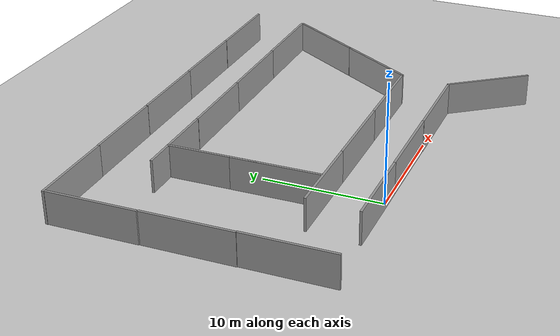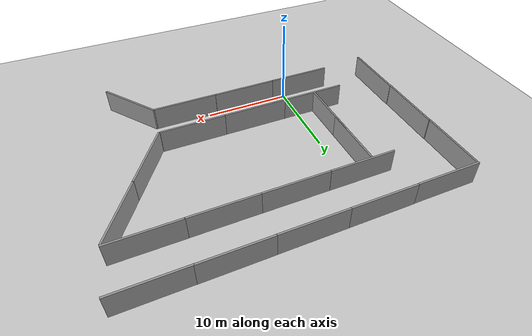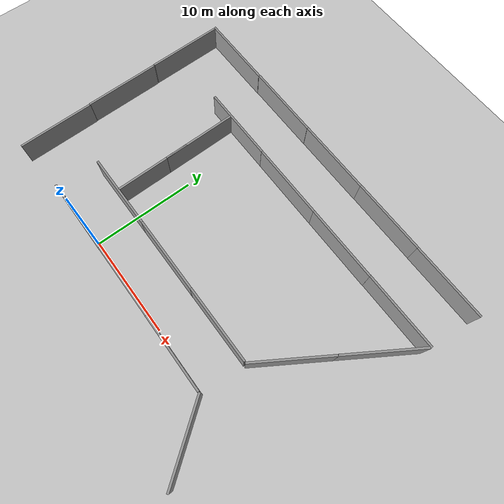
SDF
<sdf version="1.6">
 <world name="default">
  <model name="ground_plane">
   <static>1</static>
   <link name="link">
    <collision name="collision">
     <geometry><plane><normal>0 0 1</normal><size>100 100</size></plane></geometry>
     <surface><friction><ode><mu>100</mu><mu2>50</mu2></ode></friction></surface>
    </collision>
    <visual name="visual">
     <cast_shadows>0</cast_shadows>
     <geometry><plane><normal>0 0 1</normal><size>100 100</size></plane></geometry>
     <material>
      <script><uri>file://media/materials/scripts/gazebo.material</uri><name>Gazebo/Grey</name></script>
     </material>
    </visual>
   </link>
  </model>
  <light name="sun" type="directional">
   <pose>0 0 10 0 -0 0</pose>
   <diffuse>0.8 0.8 0.8 1</diffuse>
   <specular>0.1 0.1 0.1 1</specular>
   <attenuation>
    <range>1000</range>
    <constant>0.9</constant>
    <linear>0.01</linear>
    <quadratic>0.001</quadratic>
   </attenuation>
   <direction>-0.5 0.5 -1</direction>
  </light>
  <physics name="default_physics" default="0" type="ode">
   <ode>
    <solver>
     <type>quick</type>
     <iters>1000</iters>
     <sor>1.3</sor>
     <use_dynamic_moi_rescaling>0</use_dynamic_moi_rescaling>
    </solver>
    <constraints>
     <cfm>0</cfm>
     <erp>0.2</erp>
     <contact_max_correcting_vel>100</contact_max_correcting_vel>
     <contact_surface_layer>0.001</contact_surface_layer>
    </constraints>
   </ode>
   <max_step_size>0.01</max_step_size>
   <real_time_factor>1</real_time_factor>
   <real_time_update_rate>100</real_time_update_rate>
  </physics>
  <gravity>0 0 -9.8</gravity>
  <magnetic_field>6e-06 2.3e-05 -4.2e-05</magnetic_field>
  <atmosphere type="adiabatic"/>
  <scene><ambient>0.4 0.4 0.4 1</ambient><background>0.7 0.7 0.7 1</background><shadows>1</shadows></scene>
  <spherical_coordinates>
   <surface_model>EARTH_WGS84</surface_model>
   <latitude_deg>0</latitude_deg>
   <longitude_deg>0</longitude_deg>
   <elevation>0</elevation>
   <heading_deg>0</heading_deg>
  </spherical_coordinates>
  <model name="grey_wall">
   <static>1</static>
   <link name="link">
    <pose>0 0 1.4 0 -0 0</pose>
    <collision name="collision"><geometry><box><size>7.5 0.2 2.8</size></box></geometry></collision>
    <visual name="visual">
     <cast_shadows>0</cast_shadows>
     <geometry><box><size>7.5 0.2 2.8</size></box></geometry>
     <material>
      <script>
       <uri>model://grey_wall/materials/scripts</uri>
       <uri>model://grey_wall/materials/textures</uri>
       <name>vrc/grey_wall</name>
      </script>
     </material>
    </visual>
   </link>
   <pose>-1.97481 4.11952 0 0 -0 0</pose>
  </model>
  <model name="grey_wall_0">
   <static>1</static>
   <link name="link">
    <pose>0 0 1.4 0 -0 0</pose>
    <collision name="collision"><geometry><box><size>7.5 0.2 2.8</size></box></geometry></collision>
    <visual name="visual">
     <cast_shadows>0</cast_shadows>
     <geometry><box><size>7.5 0.2 2.8</size></box></geometry>
     <material>
      <script>
       <uri>model://grey_wall/materials/scripts</uri>
       <uri>model://grey_wall/materials/textures</uri>
       <name>vrc/grey_wall</name>
      </script>
     </material>
    </visual>
   </link>
   <pose>5.50158 4.1217 0 0 -0 0</pose>
  </model>
  <model name="grey_wall_1">
   <static>1</static>
   <link name="link">
    <pose>0 0 1.4 0 -0 0</pose>
    <collision name="collision"><geometry><box><size>7.5 0.2 2.8</size></box></geometry></collision>
    <visual name="visual">
     <cast_shadows>0</cast_shadows>
     <geometry><box><size>7.5 0.2 2.8</size></box></geometry>
     <material>
      <script>
       <uri>model://grey_wall/materials/scripts</uri>
       <uri>model://grey_wall/materials/textures</uri>
       <name>vrc/grey_wall</name>
      </script>
     </material>
    </visual>
   </link>
   <pose>12.9992 4.13078 0 0 -0 0</pose>
  </model>
  <model name="grey_wall_2">
   <static>1</static>
   <link name="link">
    <pose>0 0 1.4 0 -0 0</pose>
    <collision name="collision"><geometry><box><size>7.5 0.2 2.8</size></box></geometry></collision>
    <visual name="visual">
     <cast_shadows>0</cast_shadows>
     <geometry><box><size>7.5 0.2 2.8</size></box></geometry>
     <material>
      <script>
       <uri>model://grey_wall/materials/scripts</uri>
       <uri>model://grey_wall/materials/textures</uri>
       <name>vrc/grey_wall</name>
      </script>
     </material>
    </visual>
   </link>
   <pose>18.8391 7.25684 0 0 -0 1.01032</pose>
  </model>
  <model name="grey_wall_3">
   <static>1</static>
   <link name="link">
    <pose>0 0 1.4 0 -0 0</pose>
    <collision name="collision"><geometry><box><size>7.5 0.2 2.8</size></box></geometry></collision>
    <visual name="visual">
     <cast_shadows>0</cast_shadows>
     <geometry><box><size>7.5 0.2 2.8</size></box></geometry>
     <material>
      <script>
       <uri>model://grey_wall/materials/scripts</uri>
       <uri>model://grey_wall/materials/textures</uri>
       <name>vrc/grey_wall</name>
      </script>
     </material>
    </visual>
   </link>
   <pose>21.1432 16.8972 0 0 -0 0</pose>
  </model>
  <model name="grey_wall_2_clone">
   <static>1</static>
   <link name="link">
    <pose>0 0 1.4 0 -0 0</pose>
    <collision name="collision"><geometry><box><size>7.5 0.2 2.8</size></box></geometry></collision>
    <visual name="visual">
     <cast_shadows>0</cast_shadows>
     <geometry><box><size>7.5 0.2 2.8</size></box></geometry>
     <material>
      <script>
       <uri>model://grey_wall/materials/scripts</uri>
       <uri>model://grey_wall/materials/textures</uri>
       <name>vrc/grey_wall</name>
      </script>
     </material>
    </visual>
   </link>
   <pose>22.8333 13.6276 0 0 -0 1.01032</pose>
  </model>
  <model name="grey_wall_3_clone">
   <static>1</static>
   <link name="link">
    <pose>0 0 1.4 0 -0 0</pose>
    <collision name="collision"><geometry><box><size>7.5 0.2 2.8</size></box></geometry></collision>
    <visual name="visual">
     <cast_shadows>0</cast_shadows>
     <geometry><box><size>7.5 0.2 2.8</size></box></geometry>
     <material>
      <script>
       <uri>model://grey_wall/materials/scripts</uri>
       <uri>model://grey_wall/materials/textures</uri>
       <name>vrc/grey_wall</name>
      </script>
     </material>
    </visual>
   </link>
   <pose>13.7248 16.882 0 0 -0 0</pose>
  </model>
  <model name="grey_wall_3_clone_clone">
   <static>1</static>
   <link name="link">
    <pose>0 0 1.4 0 -0 0</pose>
    <collision name="collision"><geometry><box><size>7.5 0.2 2.8</size></box></geometry></collision>
    <visual name="visual">
     <cast_shadows>0</cast_shadows>
     <geometry><box><size>7.5 0.2 2.8</size></box></geometry>
     <material>
      <script>
       <uri>model://grey_wall/materials/scripts</uri>
       <uri>model://grey_wall/materials/textures</uri>
       <name>vrc/grey_wall</name>
      </script>
     </material>
    </visual>
   </link>
   <pose>6.26537 16.8814 0 0 -0 0</pose>
  </model>
  <model name="grey_wall_3_clone_clone_0">
   <static>1</static>
   <link name="link">
    <pose>0 0 1.4 0 -0 0</pose>
    <collision name="collision"><geometry><box><size>7.5 0.2 2.8</size></box></geometry></collision>
    <visual name="visual">
     <cast_shadows>0</cast_shadows>
     <geometry><box><size>7.5 0.2 2.8</size></box></geometry>
     <material>
      <script>
       <uri>model://grey_wall/materials/scripts</uri>
       <uri>model://grey_wall/materials/textures</uri>
       <name>vrc/grey_wall</name>
      </script>
     </material>
    </visual>
   </link>
   <pose>-1.24766 16.8863 0 0 -0 0</pose>
  </model>
  <model name="grey_wall_3_clone_clone_1">
   <static>1</static>
   <link name="link">
    <pose>0 0 1.4 0 -0 0</pose>
    <collision name="collision"><geometry><box><size>7.5 0.2 2.8</size></box></geometry></collision>
    <visual name="visual">
     <cast_shadows>0</cast_shadows>
     <geometry><box><size>7.5 0.2 2.8</size></box></geometry>
     <material>
      <script>
       <uri>model://grey_wall/materials/scripts</uri>
       <uri>model://grey_wall/materials/textures</uri>
       <name>vrc/grey_wall</name>
      </script>
     </material>
    </visual>
   </link>
   <pose>-2.19794 7.93708 0 0 0 -1.55755</pose>
  </model>
  <model name="grey_wall_clone">
   <static>1</static>
   <link name="link">
    <pose>0 0 1.4 0 -0 0</pose>
    <collision name="collision"><geometry><box><size>7.5 0.2 2.8</size></box></geometry></collision>
    <visual name="visual">
     <cast_shadows>0</cast_shadows>
     <geometry><box><size>7.5 0.2 2.8</size></box></geometry>
     <material>
      <script>
       <uri>model://grey_wall/materials/scripts</uri>
       <uri>model://grey_wall/materials/textures</uri>
       <name>vrc/grey_wall</name>
      </script>
     </material>
    </visual>
   </link>
   <pose>-2.16652 -0.160988 0 0 -0 0</pose>
  </model>
  <model name="grey_wall_clone_0">
   <static>1</static>
   <link name="link">
    <pose>0 0 1.4 0 -0 0</pose>
    <collision name="collision"><geometry><box><size>7.5 0.2 2.8</size></box></geometry></collision>
    <visual name="visual">
     <cast_shadows>0</cast_shadows>
     <geometry><box><size>7.5 0.2 2.8</size></box></geometry>
     <material>
      <script>
       <uri>model://grey_wall/materials/scripts</uri>
       <uri>model://grey_wall/materials/textures</uri>
       <name>vrc/grey_wall</name>
      </script>
     </material>
    </visual>
   </link>
   <pose>5.2602 -0.148445 0 0 -0 0</pose>
  </model>
  <model name="grey_wall_clone_1">
   <static>1</static>
   <link name="link">
    <pose>0 0 1.4 0 -0 0</pose>
    <collision name="collision"><geometry><box><size>7.5 0.2 2.8</size></box></geometry></collision>
    <visual name="visual">
     <cast_shadows>0</cast_shadows>
     <geometry><box><size>7.5 0.2 2.8</size></box></geometry>
     <material>
      <script>
       <uri>model://grey_wall/materials/scripts</uri>
       <uri>model://grey_wall/materials/textures</uri>
       <name>vrc/grey_wall</name>
      </script>
     </material>
    </visual>
   </link>
   <pose>12.6786 -0.161398 0 0 -0 0</pose>
  </model>
  <model name="grey_wall_2_clone_0">
   <static>1</static>
   <link name="link">
    <pose>0 0 1.4 0 -0 0</pose>
    <collision name="collision"><geometry><box><size>7.5 0.2 2.8</size></box></geometry></collision>
    <visual name="visual">
     <cast_shadows>0</cast_shadows>
     <geometry><box><size>7.5 0.2 2.8</size></box></geometry>
     <material>
      <script>
       <uri>model://grey_wall/materials/scripts</uri>
       <uri>model://grey_wall/materials/textures</uri>
       <name>vrc/grey_wall</name>
      </script>
     </material>
    </visual>
   </link>
   <pose>18.7174 -3.10974 0 0 -0 2.20799</pose>
  </model>
  <model name="grey_wall_3_clone_0">
   <static>1</static>
   <link name="link">
    <pose>0 0 1.4 0 -0 0</pose>
    <collision name="collision"><geometry><box><size>7.5 0.2 2.8</size></box></geometry></collision>
    <visual name="visual">
     <cast_shadows>0</cast_shadows>
     <geometry><box><size>7.5 0.2 2.8</size></box></geometry>
     <material>
      <script>
       <uri>model://grey_wall/materials/scripts</uri>
       <uri>model://grey_wall/materials/textures</uri>
       <name>vrc/grey_wall</name>
      </script>
     </material>
    </visual>
   </link>
   <pose>21.7643 21.8781 0 0 -0 0</pose>
  </model>
  <model name="grey_wall_3_clone_0_clone">
   <static>1</static>
   <link name="link">
    <pose>0 0 1.4 0 -0 0</pose>
    <collision name="collision"><geometry><box><size>7.5 0.2 2.8</size></box></geometry></collision>
    <visual name="visual">
     <cast_shadows>0</cast_shadows>
     <geometry><box><size>7.5 0.2 2.8</size></box></geometry>
     <material>
      <script>
       <uri>model://grey_wall/materials/scripts</uri>
       <uri>model://grey_wall/materials/textures</uri>
       <name>vrc/grey_wall</name>
      </script>
     </material>
    </visual>
   </link>
   <pose>14.3314 21.8927 0 0 -0 0</pose>
  </model>
  <model name="grey_wall_3_clone_0_clone_0">
   <static>1</static>
   <link name="link">
    <pose>0 0 1.4 0 -0 0</pose>
    <collision name="collision"><geometry><box><size>7.5 0.2 2.8</size></box></geometry></collision>
    <visual name="visual">
     <cast_shadows>0</cast_shadows>
     <geometry><box><size>7.5 0.2 2.8</size></box></geometry>
     <material>
      <script>
       <uri>model://grey_wall/materials/scripts</uri>
       <uri>model://grey_wall/materials/textures</uri>
       <name>vrc/grey_wall</name>
      </script>
     </material>
    </visual>
   </link>
   <pose>6.88412 21.8801 0 0 -0 0</pose>
  </model>
  <model name="grey_wall_3_clone_0_clone_1">
   <static>1</static>
   <link name="link">
    <pose>0 0 1.4 0 -0 0</pose>
    <collision name="collision"><geometry><box><size>7.5 0.2 2.8</size></box></geometry></collision>
    <visual name="visual">
     <cast_shadows>0</cast_shadows>
     <geometry><box><size>7.5 0.2 2.8</size></box></geometry>
     <material>
      <script>
       <uri>model://grey_wall/materials/scripts</uri>
       <uri>model://grey_wall/materials/textures</uri>
       <name>vrc/grey_wall</name>
      </script>
     </material>
    </visual>
   </link>
   <pose>-0.632685 21.8741 0 0 -0 0</pose>
  </model>
  <model name="grey_wall_3_clone_0_clone_2">
   <static>1</static>
   <link name="link">
    <pose>0 0 1.4 0 -0 0</pose>
    <collision name="collision"><geometry><box><size>7.5 0.2 2.8</size></box></geometry></collision>
    <visual name="visual">
     <cast_shadows>0</cast_shadows>
     <geometry><box><size>7.5 0.2 2.8</size></box></geometry>
     <material>
      <script>
       <uri>model://grey_wall/materials/scripts</uri>
       <uri>model://grey_wall/materials/textures</uri>
       <name>vrc/grey_wall</name>
      </script>
     </material>
    </visual>
   </link>
   <pose>-8.09715 21.8471 0 0 -0 0</pose>
  </model>
  <model name="grey_wall_3_clone_clone_1_clone">
   <static>1</static>
   <link name="link">
    <pose>0 0 1.4 0 -0 0</pose>
    <collision name="collision"><geometry><box><size>7.5 0.2 2.8</size></box></geometry></collision>
    <visual name="visual">
     <cast_shadows>0</cast_shadows>
     <geometry><box><size>7.5 0.2 2.8</size></box></geometry>
     <material>
      <script>
       <uri>model://grey_wall/materials/scripts</uri>
       <uri>model://grey_wall/materials/textures</uri>
       <name>vrc/grey_wall</name>
      </script>
     </material>
    </visual>
   </link>
   <pose>-11.6764 18.0278 0 0 0 -1.55755</pose>
  </model>
  <model name="grey_wall_3_clone_clone_1_clone_0">
   <static>1</static>
   <link name="link">
    <pose>0 0 1.4 0 -0 0</pose>
    <collision name="collision"><geometry><box><size>7.5 0.2 2.8</size></box></geometry></collision>
    <visual name="visual">
     <cast_shadows>0</cast_shadows>
     <geometry><box><size>7.5 0.2 2.8</size></box></geometry>
     <material>
      <script>
       <uri>model://grey_wall/materials/scripts</uri>
       <uri>model://grey_wall/materials/textures</uri>
       <name>vrc/grey_wall</name>
      </script>
     </material>
    </visual>
   </link>
   <pose>-11.5384 10.4623 0 0 0 -1.55755</pose>
  </model>
  <model name="grey_wall_3_clone_clone_1_clone_1">
   <static>1</static>
   <link name="link">
    <pose>0 0 1.4 0 -0 0</pose>
    <collision name="collision"><geometry><box><size>7.5 0.2 2.8</size></box></geometry></collision>
    <visual name="visual">
     <cast_shadows>0</cast_shadows>
     <geometry><box><size>7.5 0.2 2.8</size></box></geometry>
     <material>
      <script>
       <uri>model://grey_wall/materials/scripts</uri>
       <uri>model://grey_wall/materials/textures</uri>
       <name>vrc/grey_wall</name>
      </script>
     </material>
    </visual>
   </link>
   <pose>-11.3945 3.01248 0 0 0 -1.55755</pose>
  </model>
  <model name="grey_wall_3_clone_clone_1_clone_2">
   <static>1</static>
   <link name="link">
    <pose>0 0 1.4 0 -0 0</pose>
    <collision name="collision"><geometry><box><size>7.5 0.2 2.8</size></box></geometry></collision>
    <visual name="visual">
     <cast_shadows>0</cast_shadows>
     <geometry><box><size>7.5 0.2 2.8</size></box></geometry>
     <material>
      <script>
       <uri>model://grey_wall/materials/scripts</uri>
       <uri>model://grey_wall/materials/textures</uri>
       <name>vrc/grey_wall</name>
      </script>
     </material>
    </visual>
   </link>
   <pose>-2.26365 13.164 0 0 0 -1.55755</pose>
  </model>
 </world>
</sdf>
